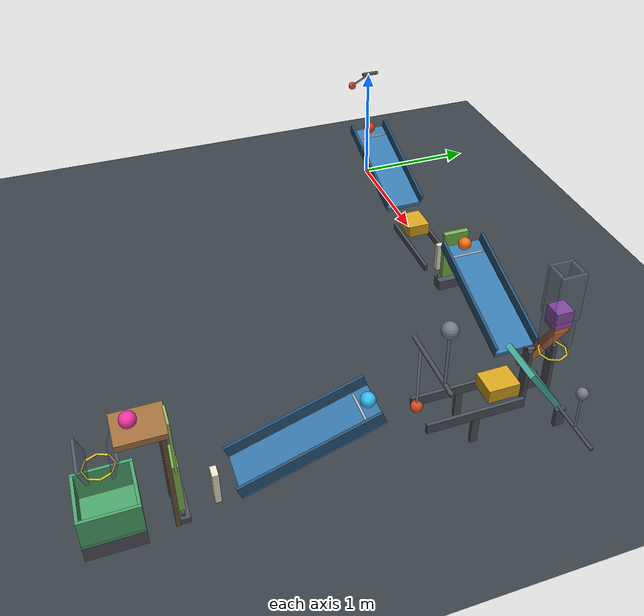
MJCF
<mujoco model="revised_passive_chain">
  <compiler angle="degree" eulerseq="XYZ" autolimits="true" inertiafromgeom="true"/>
  <option timestep="0.002" gravity="0 0 -9.81" integrator="implicitfast" cone="elliptic" iterations="100" tolerance="1e-10"/>
  <size nconmax="1000" njmax="4000"/>

  <!-- All bodies start from rest. No actuators are present. -->
  <!-- Contact damping ratio 0.6901 approximates restitution 0.05. -->
  <!-- XYZ specifies extrinsic rotations, including ramp3's orientation. -->
  <!-- Additional passive guides and gravity-assist mechanisms are explicit. -->

  <worldbody>
    <light name="main_light" pos="1 -1 5" dir="0 0 -1" diffuse="0.8 0.8 0.8"/>
    <light name="fill_light" pos="-2 -3 3" dir="1 1 -1" diffuse="0.4 0.4 0.4"/>
    <camera name="overview" pos="6 -7 5" xyaxes="0.8 0.6 0 -0.3 0.4 0.866"/>

    <geom name="floor" type="plane" size="20 20 0.1" rgba="0.22 0.25 0.28 1" friction="0.68 0.005 0.001" solref="0.01 0.6901" solimp="0.95 0.99 0.001"/>

    <!-- Pendulum length is measured from pivot to bob center. -->
    <body name="pendulum1" pos="0.04 0 1.03" euler="0 55 0">
      <joint name="pendulum1_hinge" type="hinge" axis="0 -1 0" damping="0.04" range="0 140"/>
      <geom name="pendulum1_rod" type="capsule" fromto="0 0 0 0 0 -0.515" size="0.009" mass="0.08" rgba="0.55 0.58 0.62 1" friction="0.68 0.005 0.001" solref="0.01 0.6901"/>
      <geom name="pendulum1_bob" type="sphere" pos="0 0 -0.55" size="0.035" mass="0.32" rgba="0.85 0.3 0.12 1" friction="0.68 0.005 0.001" solref="0.01 0.6901"/>
    </body>

    <body name="pendulum1_mount" pos="0.04 0 1.03">
      <geom name="pendulum1_mount_axle" type="cylinder" size="0.015 0.07" euler="90 0 0" rgba="0.3 0.32 0.35 1" contype="0" conaffinity="0"/>
    </body>

    <body name="ball1" pos="0.054099 0 0.493543">
      <freejoint name="ball1_free"/>
      <geom name="ball1_sphere" type="sphere" size="0.05" mass="0.20" rgba="0.95 0.2 0.12 1" friction="0.68 0.005 0.001" solref="0.01 0.6901" solimp="0.95 0.99 0.001"/>
    </body>

    <!-- Ramp1 top endpoints: (0,0,0.459290), (0.898243,0,0.15). -->
    <body name="ramp1" pos="0.442610 0 0.285734" euler="0 19 0">
      <geom name="ramp1_deck" type="box" size="0.475 0.15 0.02" rgba="0.22 0.48 0.68 1" friction="0.68 0.005 0.001" solref="0.01 0.6901"/>
      <geom name="ramp1_rail_left" type="box" pos="0 0.16 0.06" size="0.475 0.01 0.04" rgba="0.16 0.34 0.48 1" friction="0.68 0.005 0.001" solref="0.01 0.6901"/>
      <geom name="ramp1_rail_right" type="box" pos="0 -0.16 0.06" size="0.475 0.01 0.04" rgba="0.16 0.34 0.48 1" friction="0.68 0.005 0.001" solref="0.01 0.6901"/>
      <geom name="ramp1_release_lip" type="capsule" fromto="-0.370 -0.13 0.02 -0.370 0.13 0.02" size="0.008" rgba="0.7 0.75 0.8 1" friction="0.68 0.005 0.001" solref="0.01 0.6901"/>
    </body>

    <body name="cart1" pos="1.128243 0 0.10">
      <joint name="cart1_slide" type="slide" axis="1 0 0" damping="0.20" range="0 0.40" solreflimit="0.006 1"/>
      <geom name="cart1_chassis" type="box" size="0.11 0.09 0.05" mass="0.50" rgba="0.85 0.65 0.12 1" friction="0.68 0.005 0.001" solref="0.01 0.6901"/>
    </body>

    <body name="cart1_track" pos="1.328243 0 0.025">
      <geom name="cart1_track_left" type="box" pos="0 0.12 0" size="0.32 0.012 0.025" rgba="0.3 0.32 0.35 1" friction="0.68 0.005 0.001" solref="0.01 0.6901"/>
      <geom name="cart1_track_right" type="box" pos="0 -0.12 0" size="0.32 0.012 0.025" rgba="0.3 0.32 0.35 1" friction="0.68 0.005 0.001" solref="0.01 0.6901"/>
    </body>

    <body name="domino1" pos="1.655243 0 0.12">
      <freejoint name="domino1_free"/>
      <geom name="domino1_block" type="box" size="0.02 0.04 0.12" mass="0.25" rgba="0.92 0.9 0.8 1" friction="0.68 0.005 0.001" solref="0.01 0.6901"/>
    </body>

    <body name="flap1" pos="1.875243 0 0.105">
      <joint name="flap1_hinge" type="hinge" axis="0 1 0" damping="0.04" range="0 65" solreflimit="0.006 1"/>
      <geom name="flap1_panel" type="box" pos="0 0 0.20" size="0.02 0.10 0.20" mass="0.30" rgba="0.48 0.72 0.3 1" friction="0.68 0.005 0.001" solref="0.01 0.6901"/>
    </body>

    <body name="flap1_mount" pos="1.875243 0 0.105">
      <geom name="flap1_mount_axle" type="cylinder" size="0.012 0.13" euler="90 0 0" rgba="0.3 0.32 0.35 1" contype="0" conaffinity="0"/>
      <geom name="flap1_mount_base" type="box" pos="0 0 -0.065" size="0.045 0.13 0.04" rgba="0.3 0.32 0.35 1" friction="0.68 0.005 0.001" solref="0.01 0.6901"/>
    </body>

    <body name="ball2" pos="2.024099 0 0.493543">
      <freejoint name="ball2_free"/>
      <geom name="ball2_sphere" type="sphere" size="0.05" mass="0.20" rgba="0.95 0.45 0.08 1" friction="0.68 0.005 0.001" solref="0.01 0.6901"/>
    </body>

    <body name="ramp2" pos="2.412610 0 0.285734" euler="0 19 0">
      <geom name="ramp2_deck" type="box" size="0.475 0.15 0.02" rgba="0.22 0.48 0.68 1" friction="0.68 0.005 0.001" solref="0.01 0.6901"/>
      <geom name="ramp2_rail_left" type="box" pos="0 0.16 0.06" size="0.475 0.01 0.04" rgba="0.16 0.34 0.48 1" friction="0.68 0.005 0.001" solref="0.01 0.6901"/>
      <geom name="ramp2_rail_right" type="box" pos="0 -0.16 0.06" size="0.475 0.01 0.04" rgba="0.16 0.34 0.48 1" friction="0.68 0.005 0.001" solref="0.01 0.6901"/>
      <geom name="ramp2_release_lip" type="capsule" fromto="-0.370 -0.13 0.02 -0.370 0.13 0.02" size="0.008" rgba="0.7 0.75 0.8 1" friction="0.68 0.005 0.001" solref="0.01 0.6901"/>
    </body>

    <!-- Initial beam inclination keeps block1 and ring1 above the floor. -->
    <!-- The spring is slightly underbalanced at the initial lower stop. -->
    <body name="seesaw1" pos="3.147986 0 0.421458" euler="0 -60 0">
      <joint name="seesaw1_hinge" type="hinge" axis="0 -1 0" damping="0.04" stiffness="0.8" springref="35.0" range="0 40" solreflimit="0.006 1"/>
      <geom name="seesaw1_beam" type="box" size="0.325 0.05 0.02" mass="0.50" rgba="0.72 0.38 0.18 1" friction="0.68 0.005 0.001" solref="0.01 0.6901"/>
      <geom name="seesaw1_block_pad" type="box" pos="0.325 0 0.04" euler="0 60 0" size="0.059 0.059 0.01" mass="0.05" rgba="0.78 0.46 0.22 1" friction="0.68 0.005 0.001" solref="0.01 0.6901"/>
    </body>

    <body name="seesaw1_mount" pos="3.147986 0 0.421458">
      <geom name="seesaw1_mount_axle" type="cylinder" size="0.015 0.10" euler="90 0 0" rgba="0.3 0.32 0.35 1" contype="0" conaffinity="0"/>
      <geom name="seesaw1_mount_left" type="box" pos="0 0.09 -0.210729" size="0.035 0.015 0.210729" rgba="0.3 0.32 0.35 1" friction="0.68 0.005 0.001" solref="0.01 0.6901"/>
      <geom name="seesaw1_mount_right" type="box" pos="0 -0.09 -0.210729" size="0.035 0.015 0.210729" rgba="0.3 0.32 0.35 1" friction="0.68 0.005 0.001" solref="0.01 0.6901"/>
    </body>

    <body name="block1" pos="3.275845 0 0.792916">
      <freejoint name="block1_free"/>
      <geom name="block1_cube" type="box" size="0.06 0.06 0.06" mass="0.35" rgba="0.65 0.3 0.8 1" friction="0.68 0.005 0.001" solref="0.01 0.6901"/>
    </body>

    <!-- X walls start above the swept beam and pad. -->
    <!-- Y walls clear the beam and pad laterally. -->
    <body name="block1_guide" pos="3.275845 0 0">
      <geom name="block1_guide_x_positive" type="box" pos="0.073 0 0.975" size="0.012 0.085 0.175" rgba="0.45 0.5 0.55 0.35" friction="0.68 0.005 0.001" solref="0.01 0.6901"/>
      <geom name="block1_guide_x_negative" type="box" pos="-0.073 0 0.975" size="0.012 0.085 0.175" rgba="0.45 0.5 0.55 0.35" friction="0.68 0.005 0.001" solref="0.01 0.6901"/>
      <geom name="block1_guide_y_positive" type="box" pos="0 0.073 0.85" size="0.061 0.012 0.30" rgba="0.45 0.5 0.55 0.35" friction="0.68 0.005 0.001" solref="0.01 0.6901"/>
      <geom name="block1_guide_y_negative" type="box" pos="0 -0.073 0.85" size="0.061 0.012 0.30" rgba="0.45 0.5 0.55 0.35" friction="0.68 0.005 0.001" solref="0.01 0.6901"/>
    </body>

    <!-- Octagonal ring with minimum clear diameter 0.16 m. -->
    <!-- Polygon corners accommodate the aligned cube; this is not a circular torus. -->
    <body name="ring1" pos="3.275845 0 0.492916">
      <geom name="ring1_segment_1" type="capsule" fromto="0.093086 0 0 0.065823 0.065823 0" size="0.006" rgba="0.95 0.8 0.15 1" friction="0.68 0.005 0.001" solref="0.01 0.6901"/>
      <geom name="ring1_segment_2" type="capsule" fromto="0.065823 0.065823 0 0 0.093086 0" size="0.006" rgba="0.95 0.8 0.15 1" friction="0.68 0.005 0.001" solref="0.01 0.6901"/>
      <geom name="ring1_segment_3" type="capsule" fromto="0 0.093086 0 -0.065823 0.065823 0" size="0.006" rgba="0.95 0.8 0.15 1" friction="0.68 0.005 0.001" solref="0.01 0.6901"/>
      <geom name="ring1_segment_4" type="capsule" fromto="-0.065823 0.065823 0 -0.093086 0 0" size="0.006" rgba="0.95 0.8 0.15 1" friction="0.68 0.005 0.001" solref="0.01 0.6901"/>
      <geom name="ring1_segment_5" type="capsule" fromto="-0.093086 0 0 -0.065823 -0.065823 0" size="0.006" rgba="0.95 0.8 0.15 1" friction="0.68 0.005 0.001" solref="0.01 0.6901"/>
      <geom name="ring1_segment_6" type="capsule" fromto="-0.065823 -0.065823 0 0 -0.093086 0" size="0.006" rgba="0.95 0.8 0.15 1" friction="0.68 0.005 0.001" solref="0.01 0.6901"/>
      <geom name="ring1_segment_7" type="capsule" fromto="0 -0.093086 0 0.065823 -0.065823 0" size="0.006" rgba="0.95 0.8 0.15 1" friction="0.68 0.005 0.001" solref="0.01 0.6901"/>
      <geom name="ring1_segment_8" type="capsule" fromto="0.065823 -0.065823 0 0.093086 0 0" size="0.006" rgba="0.95 0.8 0.15 1" friction="0.68 0.005 0.001" solref="0.01 0.6901"/>
    </body>

    <!-- Door spring holds its initial inclined pose against the lower stop. -->
    <body name="door1" pos="3.275845 0.005635 0.14" euler="35 0 0">
      <joint name="door1_hinge" type="hinge" axis="1 0 0" damping="0.04" stiffness="0.8" springref="-38.20" range="0 70" solreflimit="0.006 1"/>
      <geom name="door1_panel" type="box" pos="0 0 0.21" size="0.16 0.02 0.21" mass="0.45" rgba="0.3 0.7 0.65 1" friction="0.68 0.005 0.001" solref="0.01 0.6901"/>
    </body>

    <!-- Passive inverted counterweight mechanically coupled to door1. -->
    <body name="door1_assist" pos="3.625845 0.005635 0.14">
      <joint name="door1_assist_hinge" type="hinge" axis="1 0 0" damping="0.04" range="0 70" solreflimit="0.006 1"/>
      <geom name="door1_assist_arm" type="capsule" fromto="0 0 0 0 0 0.27" size="0.008" mass="0.05" rgba="0.45 0.48 0.52 1" friction="0.68 0.005 0.001" solref="0.01 0.6901"/>
      <geom name="door1_assist_weight" type="sphere" pos="0 0 0.30" size="0.04" mass="0.45" rgba="0.45 0.48 0.52 1" friction="0.68 0.005 0.001" solref="0.01 0.6901"/>
    </body>

    <body name="door1_mount" pos="3.275845 0.005635 0.14">
      <geom name="door1_mount_axle" type="cylinder" pos="0.175 0 0" size="0.012 0.37" euler="0 90 0" rgba="0.3 0.32 0.35 1" contype="0" conaffinity="0"/>
      <geom name="door1_mount_left" type="box" pos="-0.18 0 -0.07" size="0.015 0.035 0.07" rgba="0.3 0.32 0.35 1" friction="0.68 0.005 0.001" solref="0.01 0.6901"/>
      <geom name="door1_mount_right" type="box" pos="0.18 0 -0.07" size="0.015 0.035 0.07" rgba="0.3 0.32 0.35 1" friction="0.68 0.005 0.001" solref="0.01 0.6901"/>
    </body>

    <body name="cart2" pos="3.275845 -0.37435 0.32">
      <joint name="cart2_slide" type="slide" axis="0 -1 0" damping="0.20" range="0 0.42" solreflimit="0.006 1"/>
      <geom name="cart2_chassis" type="box" size="0.09 0.11 0.05" mass="0.50" rgba="0.85 0.65 0.12 1" friction="0.68 0.005 0.001" solref="0.01 0.6901"/>
    </body>

    <body name="cart2_track" pos="3.275845 -0.58435 0">
      <geom name="cart2_track_left" type="box" pos="-0.12 0 0.235" size="0.012 0.34 0.035" rgba="0.3 0.32 0.35 1" friction="0.68 0.005 0.001" solref="0.01 0.6901"/>
      <geom name="cart2_track_right" type="box" pos="0.12 0 0.235" size="0.012 0.34 0.035" rgba="0.3 0.32 0.35 1" friction="0.68 0.005 0.001" solref="0.01 0.6901"/>
      <geom name="cart2_track_leg_left" type="box" pos="-0.12 0 0.10" size="0.012 0.025 0.10" rgba="0.3 0.32 0.35 1" friction="0.68 0.005 0.001" solref="0.01 0.6901"/>
      <geom name="cart2_track_leg_right" type="box" pos="0.12 0 0.10" size="0.012 0.025 0.10" rgba="0.3 0.32 0.35 1" friction="0.68 0.005 0.001" solref="0.01 0.6901"/>
    </body>

    <body name="pendulum2" pos="3.275845 -0.94235 0.82">
      <joint name="pendulum2_hinge" type="hinge" axis="-1 0 0" damping="0.04" range="0 38" solreflimit="0.006 1"/>
      <geom name="pendulum2_rod" type="capsule" fromto="0 0 0 0 0 -0.465" size="0.008" mass="0.07" rgba="0.55 0.58 0.62 1" friction="0.68 0.005 0.001" solref="0.01 0.6901"/>
      <geom name="pendulum2_bob" type="sphere" pos="0 0 -0.50" size="0.04" mass="0.28" rgba="0.85 0.3 0.12 1" friction="0.68 0.005 0.001" solref="0.01 0.6901"/>
    </body>

    <!-- This separate counterweight starts exactly inverted and at rest. -->
    <!-- Its coupled positive rotation is seeded by cart2's impact. -->
    <body name="pendulum2_assist" pos="3.600845 -0.94235 0.82">
      <joint name="pendulum2_assist_hinge" type="hinge" axis="-1 0 0" damping="0.04" range="0 38" solreflimit="0.006 1"/>
      <geom name="pendulum2_assist_arm" type="capsule" fromto="0 0 0 0 0 0.36" size="0.009" mass="0.05" rgba="0.45 0.48 0.52 1" friction="0.68 0.005 0.001" solref="0.01 0.6901"/>
      <geom name="pendulum2_assist_weight" type="sphere" pos="0 0 0.40" size="0.05" mass="0.95" rgba="0.45 0.48 0.52 1" friction="0.68 0.005 0.001" solref="0.01 0.6901"/>
    </body>

    <body name="pendulum2_mount" pos="3.275845 -0.94235 0.82">
      <geom name="pendulum2_mount_axle" type="cylinder" pos="0.1625 0 0" size="0.014 0.2625" euler="0 90 0" rgba="0.3 0.32 0.35 1" contype="0" conaffinity="0"/>
    </body>

    <body name="ball3" pos="3.275845 -1.269999 0.493543">
      <freejoint name="ball3_free"/>
      <geom name="ball3_sphere" type="sphere" size="0.05" mass="0.20" rgba="0.2 0.75 0.95 1" friction="0.68 0.005 0.001" solref="0.01 0.6901"/>
    </body>

    <!-- Corrected rotation: ramp length descends toward negative y. -->
    <body name="ramp3" pos="3.275845 -1.658510 0.285734" euler="0 19 -90">
      <geom name="ramp3_deck" type="box" size="0.475 0.15 0.02" rgba="0.22 0.48 0.68 1" friction="0.68 0.005 0.001" solref="0.01 0.6901"/>
      <geom name="ramp3_rail_left" type="box" pos="0 0.16 0.06" size="0.475 0.01 0.04" rgba="0.16 0.34 0.48 1" friction="0.68 0.005 0.001" solref="0.01 0.6901"/>
      <geom name="ramp3_rail_right" type="box" pos="0 -0.16 0.06" size="0.475 0.01 0.04" rgba="0.16 0.34 0.48 1" friction="0.68 0.005 0.001" solref="0.01 0.6901"/>
      <geom name="ramp3_release_lip" type="capsule" fromto="-0.370 -0.13 0.02 -0.370 0.13 0.02" size="0.008" rgba="0.7 0.75 0.8 1" friction="0.68 0.005 0.001" solref="0.01 0.6901"/>
    </body>

    <body name="domino2" pos="3.275845 -2.234143 0.12">
      <freejoint name="domino2_free"/>
      <geom name="domino2_block" type="box" size="0.04 0.02 0.12" mass="0.25" rgba="0.92 0.9 0.8 1" friction="0.68 0.005 0.001" solref="0.01 0.6901"/>
    </body>

    <!-- The striking arm runs outside the shelf's x footprint. -->
    <!-- Its crossbar passes over the shelf edge before dropping. -->
    <body name="flap2" pos="3.275845 -2.454143 0.08">
      <joint name="flap2_hinge" type="hinge" axis="1 0 0" damping="0.04" range="0 60" solreflimit="0.006 1"/>
      <geom name="flap2_panel" type="box" pos="0 0 0.19" size="0.09 0.02 0.19" mass="0.262" rgba="0.48 0.72 0.3 1" friction="0.68 0.005 0.001" solref="0.01 0.6901"/>
      <geom name="flap2_striker_bridge" type="capsule" fromto="0.09 0 0.38 0.14 0 0.40" size="0.008" mass="0.002" rgba="0.62 0.76 0.4 1" friction="0.68 0.005 0.001" solref="0.01 0.6901"/>
      <geom name="flap2_striker_arm" type="capsule" fromto="0.14 0 0.40 0.14 0 0.78" size="0.008" mass="0.012" rgba="0.62 0.76 0.4 1" friction="0.68 0.005 0.001" solref="0.01 0.6901"/>
      <geom name="flap2_striker_crossbar" type="capsule" fromto="0.14 0 0.78 0 0 0.78" size="0.008" mass="0.004" rgba="0.62 0.76 0.4 1" friction="0.68 0.005 0.001" solref="0.01 0.6901"/>
    </body>

    <body name="flap2_mount" pos="3.275845 -2.454143 0.08">
      <geom name="flap2_mount_axle" type="cylinder" size="0.012 0.12" euler="0 90 0" rgba="0.3 0.32 0.35 1" contype="0" conaffinity="0"/>
      <geom name="flap2_mount_base" type="box" pos="0 0 -0.06" size="0.12 0.04 0.02" rgba="0.3 0.32 0.35 1" friction="0.68 0.005 0.001" solref="0.01 0.6901"/>
    </body>

    <body name="ball4" pos="3.275845 -2.65 0.83">
      <freejoint name="ball4_free"/>
      <geom name="ball4_sphere" type="sphere" size="0.05" mass="0.20" rgba="0.95 0.2 0.65 1" friction="0.68 0.005 0.001" solref="0.01 0.6901"/>
    </body>

    <!-- Shelf top is z=0.78; length runs along y. -->
    <body name="shelf1" pos="3.275845 -2.60 0.76">
      <geom name="shelf1_deck" type="box" size="0.125 0.15 0.02" rgba="0.65 0.45 0.25 1" friction="0.68 0.005 0.001" solref="0.01 0.6901"/>
      <geom name="shelf1_left_leg" type="box" pos="-0.11 0.11 -0.39" size="0.015 0.015 0.37" rgba="0.42 0.32 0.23 1" friction="0.68 0.005 0.001" solref="0.01 0.6901"/>
      <geom name="shelf1_right_leg" type="box" pos="0.11 0.11 -0.39" size="0.015 0.015 0.37" rgba="0.42 0.32 0.23 1" friction="0.68 0.005 0.001" solref="0.01 0.6901"/>
    </body>

    <!-- Two passive sloping guards center the ball in the y direction. -->
    <!-- Their tops lie below the crossbar's path through their footprints. -->
    <body name="ring2_guide" pos="3.275845 -2.85 0.61">
      <geom name="ring2_guide_front" type="box" pos="0 0.087589 -0.002530" euler="-18.434949 0 0" size="0.125 0.008 0.063246" rgba="0.45 0.5 0.55 0.55" friction="0.68 0.005 0.001" solref="0.01 0.6901"/>
      <geom name="ring2_guide_back" type="box" pos="0 -0.087589 -0.002530" euler="18.434949 0 0" size="0.125 0.008 0.063246" rgba="0.45 0.5 0.55 0.55" friction="0.68 0.005 0.001" solref="0.01 0.6901"/>
    </body>

    <body name="ring2" pos="3.275845 -2.85 0.53">
      <geom name="ring2_segment_1" type="capsule" fromto="0.093086 0 0 0.065823 0.065823 0" size="0.006" rgba="0.95 0.8 0.15 1" friction="0.68 0.005 0.001" solref="0.01 0.6901"/>
      <geom name="ring2_segment_2" type="capsule" fromto="0.065823 0.065823 0 0 0.093086 0" size="0.006" rgba="0.95 0.8 0.15 1" friction="0.68 0.005 0.001" solref="0.01 0.6901"/>
      <geom name="ring2_segment_3" type="capsule" fromto="0 0.093086 0 -0.065823 0.065823 0" size="0.006" rgba="0.95 0.8 0.15 1" friction="0.68 0.005 0.001" solref="0.01 0.6901"/>
      <geom name="ring2_segment_4" type="capsule" fromto="-0.065823 0.065823 0 -0.093086 0 0" size="0.006" rgba="0.95 0.8 0.15 1" friction="0.68 0.005 0.001" solref="0.01 0.6901"/>
      <geom name="ring2_segment_5" type="capsule" fromto="-0.093086 0 0 -0.065823 -0.065823 0" size="0.006" rgba="0.95 0.8 0.15 1" friction="0.68 0.005 0.001" solref="0.01 0.6901"/>
      <geom name="ring2_segment_6" type="capsule" fromto="-0.065823 -0.065823 0 0 -0.093086 0" size="0.006" rgba="0.95 0.8 0.15 1" friction="0.68 0.005 0.001" solref="0.01 0.6901"/>
      <geom name="ring2_segment_7" type="capsule" fromto="0 -0.093086 0 0.065823 -0.065823 0" size="0.006" rgba="0.95 0.8 0.15 1" friction="0.68 0.005 0.001" solref="0.01 0.6901"/>
      <geom name="ring2_segment_8" type="capsule" fromto="0.065823 -0.065823 0 0.093086 0 0" size="0.006" rgba="0.95 0.8 0.15 1" friction="0.68 0.005 0.001" solref="0.01 0.6901"/>
    </body>

    <!-- Inner footprint 0.32 by 0.32 m; walls 0.20 high and 0.02 thick. -->
    <!-- Base top z=0.13 gives a resting ball center z=0.18. -->
    <body name="box1" pos="3.275845 -2.85 0">
      <geom name="box1_pedestal" type="box" pos="0 0 0.055" size="0.18 0.18 0.055" rgba="0.3 0.32 0.35 1" friction="0.68 0.005 0.001" solref="0.01 0.6901"/>
      <geom name="box1_bottom" type="box" pos="0 0 0.12" size="0.18 0.18 0.01" rgba="0.3 0.65 0.42 1" friction="0.68 0.005 0.001" solref="0.01 0.6901"/>
      <geom name="box1_wall_x_positive" type="box" pos="0.17 0 0.23" size="0.01 0.18 0.10" rgba="0.3 0.65 0.42 1" friction="0.68 0.005 0.001" solref="0.01 0.6901"/>
      <geom name="box1_wall_x_negative" type="box" pos="-0.17 0 0.23" size="0.01 0.18 0.10" rgba="0.3 0.65 0.42 1" friction="0.68 0.005 0.001" solref="0.01 0.6901"/>
      <geom name="box1_wall_y_positive" type="box" pos="0 0.17 0.23" size="0.16 0.01 0.10" rgba="0.3 0.65 0.42 1" friction="0.68 0.005 0.001" solref="0.01 0.6901"/>
      <geom name="box1_wall_y_negative" type="box" pos="0 -0.17 0.23" size="0.16 0.01 0.10" rgba="0.3 0.65 0.42 1" friction="0.68 0.005 0.001" solref="0.01 0.6901"/>
    </body>
  </worldbody>

  <!-- These equalities represent passive shared-shaft couplings. -->
  <equality>
    <joint name="door1_assist_coupling" joint1="door1_hinge" joint2="door1_assist_hinge" polycoef="0 1 0 0 0" solref="0.004 1" solimp="0.99 0.999 0.001"/>
    <joint name="pendulum2_assist_coupling" joint1="pendulum2_hinge" joint2="pendulum2_assist_hinge" polycoef="0 1 0 0 0" solref="0.004 1" solimp="0.99 0.999 0.001"/>
  </equality>

  <!-- Unspecified keyframe positions use qpos0; velocities default to zero. -->
  <keyframe>
    <key name="start"/>
  </keyframe>
</mujoco>
